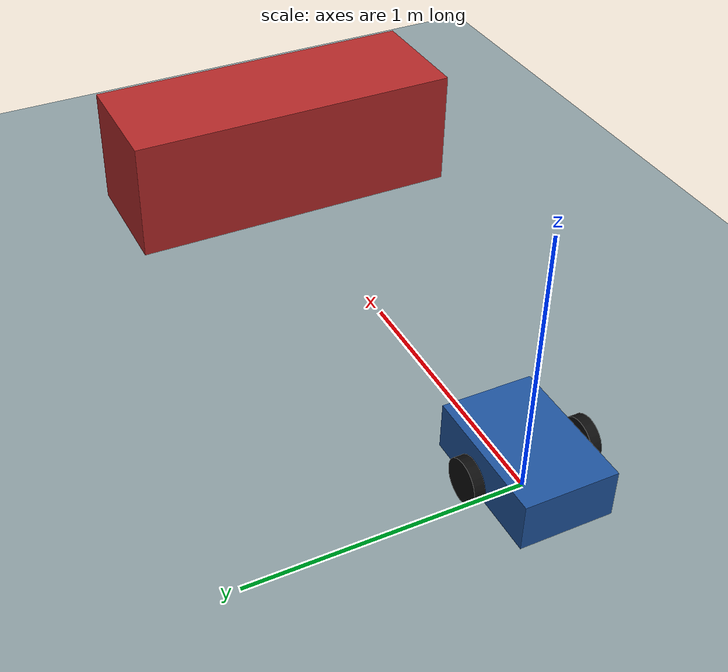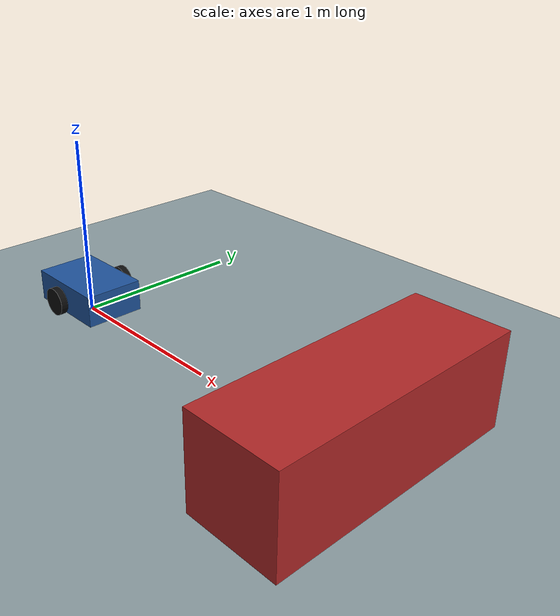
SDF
<?xml version="1.0"?>
<sdf version="1.9">
  <world name="teleop_safety_demo">
    <physics name="1ms" type="ignored">
      <max_step_size>0.001</max_step_size>
      <real_time_factor>1.0</real_time_factor>
    </physics>

    <plugin filename="gz-sim-physics-system" name="gz::sim::systems::Physics"/>
    <plugin filename="gz-sim-user-commands-system" name="gz::sim::systems::UserCommands"/>
    <plugin filename="gz-sim-scene-broadcaster-system" name="gz::sim::systems::SceneBroadcaster"/>
    <plugin filename="gz-sim-sensors-system" name="gz::sim::systems::Sensors">
      <render_engine>ogre2</render_engine>
    </plugin>

    <light name="sun" type="directional">
      <cast_shadows>true</cast_shadows>
      <pose>0 0 10 0 0 0</pose>
      <diffuse>0.8 0.8 0.8 1</diffuse>
      <specular>0.2 0.2 0.2 1</specular>
      <attenuation>
        <range>1000</range>
        <constant>0.9</constant>
        <linear>0.01</linear>
        <quadratic>0.001</quadratic>
      </attenuation>
      <direction>-0.5 0.1 -0.9</direction>
    </light>

    <model name="ground_plane">
      <static>true</static>
      <link name="link">
        <collision name="collision">
          <geometry>
            <plane>
              <normal>0 0 1</normal>
              <size>20 20</size>
            </plane>
          </geometry>
        </collision>
        <visual name="visual">
          <geometry>
            <plane>
              <normal>0 0 1</normal>
              <size>20 20</size>
            </plane>
          </geometry>
          <material>
            <ambient>0.55 0.62 0.64 1</ambient>
            <diffuse>0.55 0.62 0.64 1</diffuse>
          </material>
        </visual>
      </link>
    </model>

    <model name="obstacle">
      <static>true</static>
      <pose>2.0 0 0.25 0 0 0</pose>
      <link name="link">
        <collision name="collision">
          <geometry>
            <box>
              <size>0.5 1.4 0.5</size>
            </box>
          </geometry>
        </collision>
        <visual name="visual">
          <geometry>
            <box>
              <size>0.5 1.4 0.5</size>
            </box>
          </geometry>
          <material>
            <ambient>0.7 0.16 0.16 1</ambient>
            <diffuse>0.7 0.16 0.16 1</diffuse>
          </material>
        </visual>
      </link>
    </model>

    <model name="safety_bot">
      <pose>0 0 0.12 0 0 0</pose>

      <link name="base_link">
        <inertial>
          <mass>6.0</mass>
          <inertia>
            <ixx>0.12</ixx>
            <iyy>0.12</iyy>
            <izz>0.12</izz>
            <ixy>0</ixy>
            <ixz>0</ixz>
            <iyz>0</iyz>
          </inertia>
        </inertial>
        <collision name="collision">
          <geometry>
            <box>
              <size>0.5 0.34 0.18</size>
            </box>
          </geometry>
        </collision>
        <visual name="visual">
          <geometry>
            <box>
              <size>0.5 0.34 0.18</size>
            </box>
          </geometry>
          <material>
            <ambient>0.12 0.33 0.62 1</ambient>
            <diffuse>0.12 0.33 0.62 1</diffuse>
          </material>
        </visual>
      </link>

      <link name="lidar_link">
        <pose>0.28 0 0.08 0 0 0</pose>
        <sensor name="front_lidar" type="gpu_lidar">
          <topic>/scan</topic>
          <update_rate>15</update_rate>
          <ray>
            <scan>
              <horizontal>
                <samples>181</samples>
                <resolution>1</resolution>
                <min_angle>-1.5708</min_angle>
                <max_angle>1.5708</max_angle>
              </horizontal>
            </scan>
            <range>
              <min>0.08</min>
              <max>8.0</max>
              <resolution>0.01</resolution>
            </range>
          </ray>
          <always_on>true</always_on>
          <visualize>true</visualize>
        </sensor>
      </link>

      <link name="left_wheel">
        <pose>0 0.22 0 1.5708 0 0</pose>
        <inertial>
          <mass>0.4</mass>
          <inertia>
            <ixx>0.002</ixx>
            <iyy>0.002</iyy>
            <izz>0.002</izz>
            <ixy>0</ixy>
            <ixz>0</ixz>
            <iyz>0</iyz>
          </inertia>
        </inertial>
        <collision name="collision">
          <geometry>
            <cylinder>
              <radius>0.08</radius>
              <length>0.04</length>
            </cylinder>
          </geometry>
        </collision>
        <visual name="visual">
          <geometry>
            <cylinder>
              <radius>0.08</radius>
              <length>0.04</length>
            </cylinder>
          </geometry>
          <material>
            <ambient>0.05 0.05 0.05 1</ambient>
            <diffuse>0.05 0.05 0.05 1</diffuse>
          </material>
        </visual>
      </link>

      <link name="right_wheel">
        <pose>0 -0.22 0 1.5708 0 0</pose>
        <inertial>
          <mass>0.4</mass>
          <inertia>
            <ixx>0.002</ixx>
            <iyy>0.002</iyy>
            <izz>0.002</izz>
            <ixy>0</ixy>
            <ixz>0</ixz>
            <iyz>0</iyz>
          </inertia>
        </inertial>
        <collision name="collision">
          <geometry>
            <cylinder>
              <radius>0.08</radius>
              <length>0.04</length>
            </cylinder>
          </geometry>
        </collision>
        <visual name="visual">
          <geometry>
            <cylinder>
              <radius>0.08</radius>
              <length>0.04</length>
            </cylinder>
          </geometry>
          <material>
            <ambient>0.05 0.05 0.05 1</ambient>
            <diffuse>0.05 0.05 0.05 1</diffuse>
          </material>
        </visual>
      </link>

      <joint name="left_wheel_joint" type="revolute">
        <parent>base_link</parent>
        <child>left_wheel</child>
        <axis>
          <xyz>0 0 1</xyz>
        </axis>
      </joint>

      <joint name="right_wheel_joint" type="revolute">
        <parent>base_link</parent>
        <child>right_wheel</child>
        <axis>
          <xyz>0 0 1</xyz>
        </axis>
      </joint>

      <joint name="lidar_joint" type="fixed">
        <parent>base_link</parent>
        <child>lidar_link</child>
      </joint>

      <plugin filename="gz-sim-diff-drive-system" name="gz::sim::systems::DiffDrive">
        <left_joint>left_wheel_joint</left_joint>
        <right_joint>right_wheel_joint</right_joint>
        <wheel_separation>0.44</wheel_separation>
        <wheel_radius>0.08</wheel_radius>
        <topic>/model/safety_bot/cmd_vel</topic>
        <odom_topic>/model/safety_bot/odometry</odom_topic>
        <frame_id>odom</frame_id>
        <child_frame_id>base_link</child_frame_id>
      </plugin>
    </model>
  </world>
</sdf>
